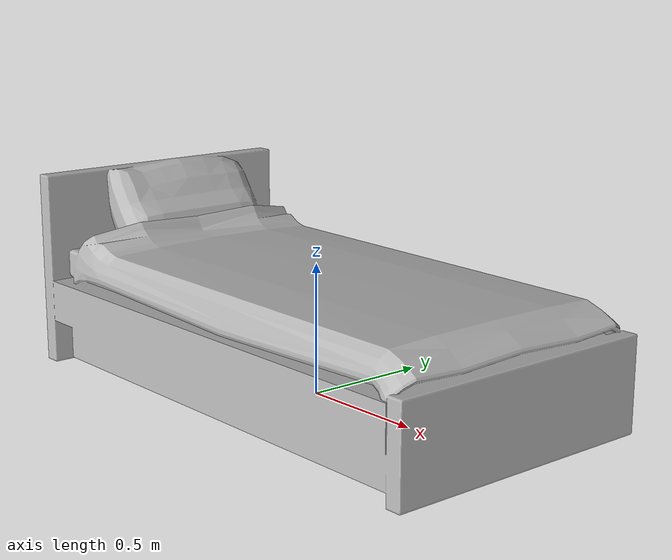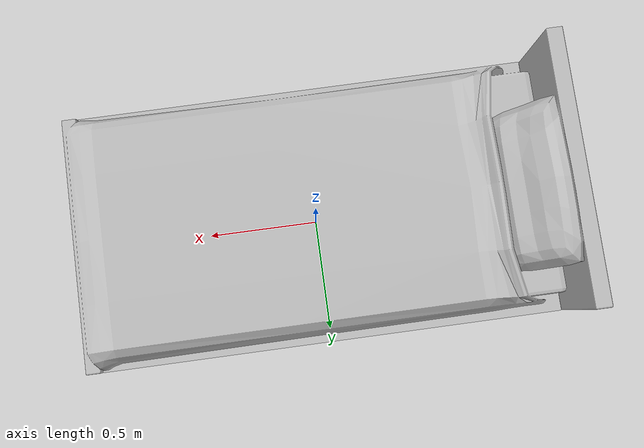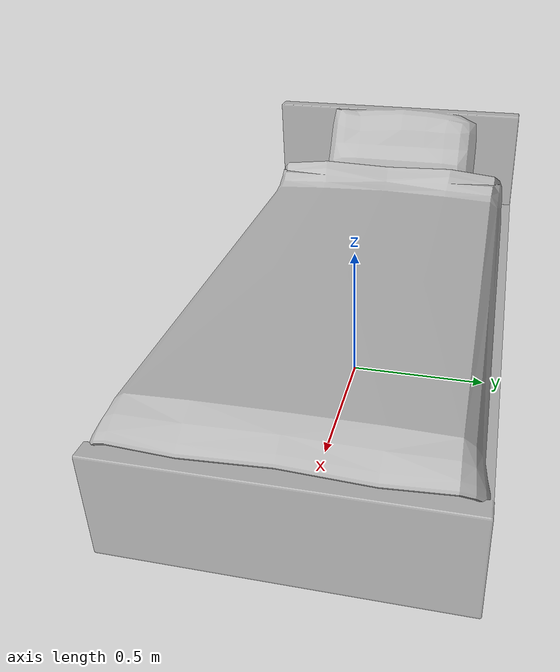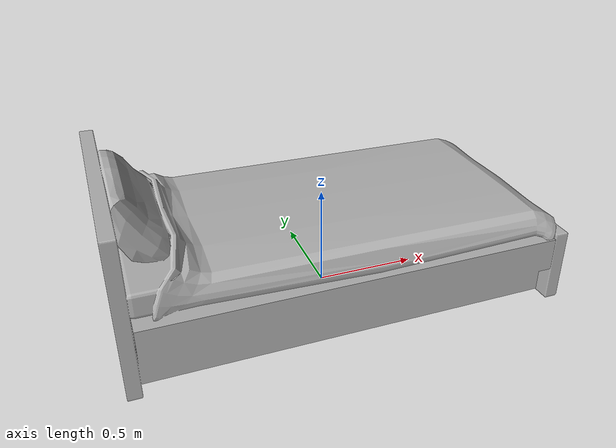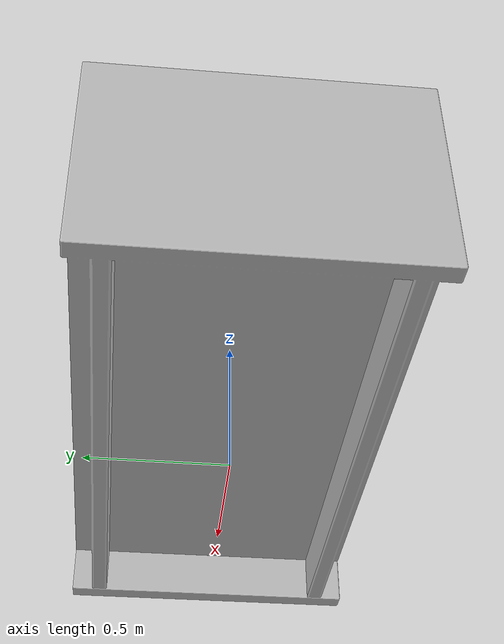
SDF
<?xml version='1.0'?>
<sdf version='1.4'>
  <model name='78'>
    <pose>0 0 0 0 0 0</pose>
    <static>true</static>
    <link name='link'>
      <collision name='collision'>
        <pose>0 0 0 0 0 0</pose>
        <geometry>
          <box>
            <size>2.09 1.1 2</size>
          </box>
        </geometry>
      </collision>
      <visual name='visual'>
        <pose>0 0 0 0 0 0</pose>
        <geometry>
          <mesh><uri>model://78/78.dae</uri></mesh>
        </geometry>
      </visual>
    </link>
  </model>
</sdf>
